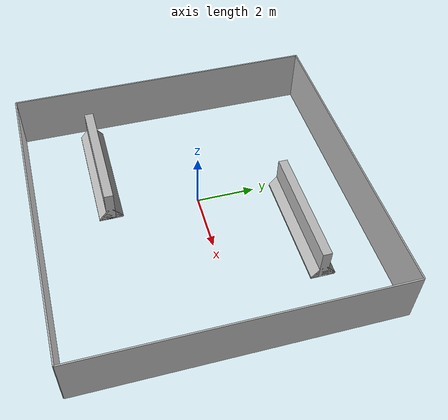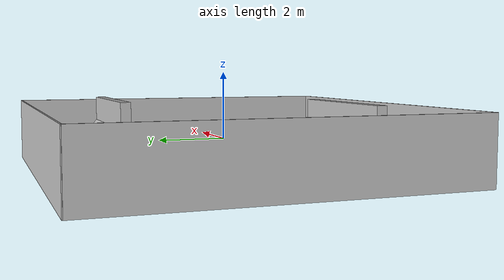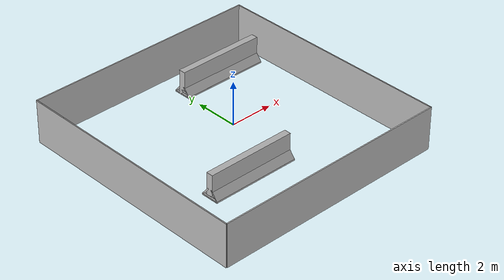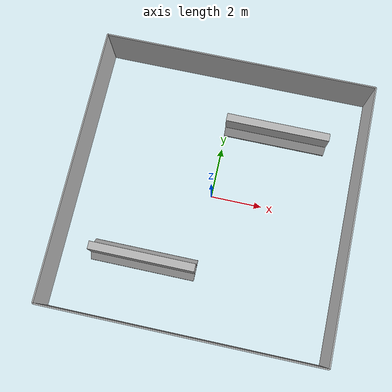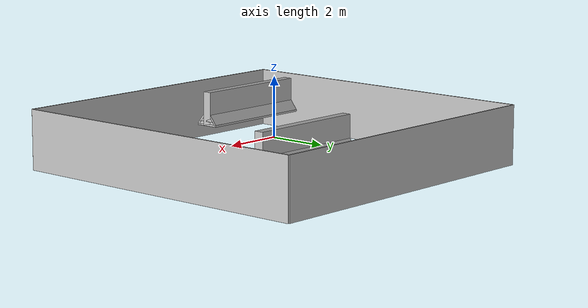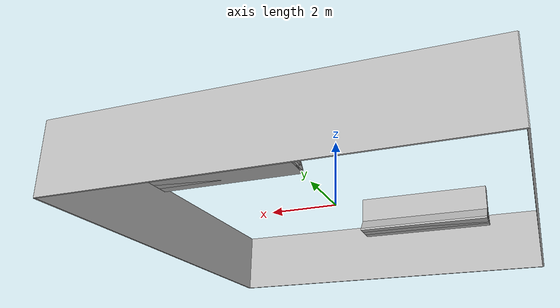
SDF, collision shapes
<?xml version='1.0'?>
<sdf version='13'>
  <model name="my_room">
  <static>true</static>
            <link name='boundary_one'>
            <pose>0 -5.5 0 0 0 0</pose>

            <collision name='collision'>
              <geometry>
                <box>
                  <size>11 .05 2</size>
                </box>
              </geometry>
            </collision>

            <visual name='visual'>
              <geometry>
                <box>
                  <size>11 .05 2</size>
                </box>
              </geometry>
                <material>
                  <script>
                    <uri>model://brick_box_3x1x3/materials/scripts</uri>
            <uri>model://brick_box_3x1x3/materials/textures</uri>
                    <name>BrickBox/Diffuse</name>
                  </script>
                </material>
            </visual>
          </link>
            <link name='boundary_two'>
            <pose>0 5.5 0 0 0 0</pose>

            <collision name='collision'>
              <geometry>
                <box>
                  <size>11 .05 2</size>
                </box>
              </geometry>
            </collision>

            <visual name='visual'>
              <geometry>
                <box>
                  <size>11 .05 2</size>
                </box>
              </geometry>
                <material>
                  <script>
                    <uri>model://brick_box_3x1x3/materials/scripts</uri>
            <uri>model://brick_box_3x1x3/materials/textures</uri>
                    <name>BrickBox/Diffuse</name>
                  </script>
                </material>
            </visual>
          </link>
            <link name='boundary_three'>
            <pose>5.5 0 0 0 0 1.57</pose>

            <collision name='collision'>
              <geometry>
                <box>
                  <size>11 .05 2</size>
                </box>
              </geometry>
            </collision>

            <visual name='visual'>
              <geometry>
                <box>
                  <size>11 .05 2</size>
                </box>
              </geometry>
                <material>
                  <script>
                    <uri>model://brick_box_3x1x3/materials/scripts</uri>
            <uri>model://brick_box_3x1x3/materials/textures</uri>
                    <name>BrickBox/Diffuse</name>
                  </script>
                </material>
            </visual>
          </link>
            <link name='boundary_four'>
            <pose>-5.5 0 0 0 0 1.57</pose>

            <collision name='collision'>
              <geometry>
                <box>
                  <size>11 .05 2</size>
                </box>
              </geometry>
            </collision>

            <visual name='visual'>
              <geometry>
                <box>
                  <size>11 .05 2</size>
                </box>
              </geometry>
                <material>
                  <script>
                    <uri>model://brick_box_3x1x3/materials/scripts</uri>
            <uri>model://brick_box_3x1x3/materials/textures</uri>
                    <name>BrickBox/Diffuse</name>
                  </script>
                </material>
            </visual>
          </link>

    <link name="link">
     <pose>2 3 0 0 0 0</pose>
      <visual name="visual">
        <geometry>
          <mesh>
            <uri>model://jersey_barrier/meshes/jersey_barrier.dae</uri>
          </mesh>
        </geometry>
      </visual>
      <collision name="upright">
        <pose>0 0 0.5715 0 0 0</pose>
        <geometry>
          <box>
            <size>4.06542 0.3063 1.143</size>
          </box>
        </geometry>
      </collision>
      <collision name="base">
        <pose>0 0 0.032258 0 0 0</pose>
        <geometry>
          <box>
            <size>4.06542 0.8107 0.064516</size>
          </box>
        </geometry>
      </collision>
      <collision name="base2">
        <pose>0 0 0.1 0 0 0</pose>
        <geometry>
          <box>
            <size>4.06542 0.65 0.1</size>
          </box>
        </geometry>
      </collision>
      <collision name="base3">
        <pose>0 0 0.2 0 0 0</pose>
        <geometry>
          <box>
            <size>4.06542 0.5 0.1</size>
          </box>
        </geometry>
      </collision>
      <collision name="left-angle">
        <pose>0 -0.224 0.2401 0.9 0 0</pose>
        <geometry>
          <box>
            <size>4.06542 0.5 0.064516</size>
          </box>
        </geometry>
      </collision>
      <collision name="right-angle">
        <pose>0 0.224 0.2401 -0.9 0 0</pose>
        <geometry>
          <box>
            <size>4.06542 0.5 0.064516</size>
          </box>
        </geometry>
      </collision>
    </link>

    <link name="link">
     <pose>-2 -3 0 0 0 0</pose>
      <visual name="visual">
        <geometry>
          <mesh>
            <uri>model://jersey_barrier/meshes/jersey_barrier.dae</uri>
          </mesh>
        </geometry>
      </visual>
      <collision name="upright">
        <pose>0 0 0.5715 0 0 0</pose>
        <geometry>
          <box>
            <size>4.06542 0.3063 1.143</size>
          </box>
        </geometry>
      </collision>
      <collision name="base">
        <pose>0 0 0.032258 0 0 0</pose>
        <geometry>
          <box>
            <size>4.06542 0.8107 0.064516</size>
          </box>
        </geometry>
      </collision>
      <collision name="base2">
        <pose>0 0 0.1 0 0 0</pose>
        <geometry>
          <box>
            <size>4.06542 0.65 0.1</size>
          </box>
        </geometry>
      </collision>
      <collision name="base3">
        <pose>0 0 0.2 0 0 0</pose>
        <geometry>
          <box>
            <size>4.06542 0.5 0.1</size>
          </box>
        </geometry>
      </collision>
      <collision name="left-angle">
        <pose>0 -0.224 0.2401 0.9 0 0</pose>
        <geometry>
          <box>
            <size>4.06542 0.5 0.064516</size>
          </box>
        </geometry>
      </collision>
      <collision name="right-angle">
        <pose>0 0.224 0.2401 -0.9 0 0</pose>
        <geometry>
          <box>
            <size>4.06542 0.5 0.064516</size>
          </box>
        </geometry>
      </collision>
    </link>

  </model>
</sdf>
